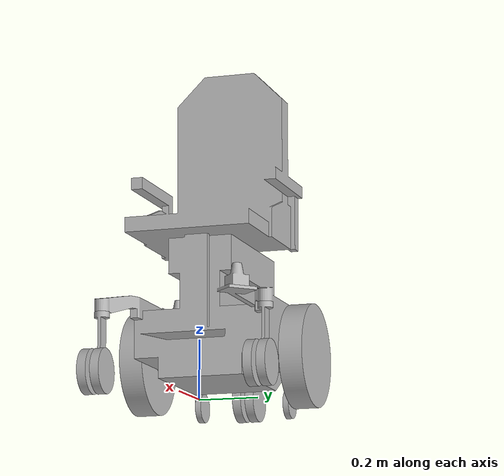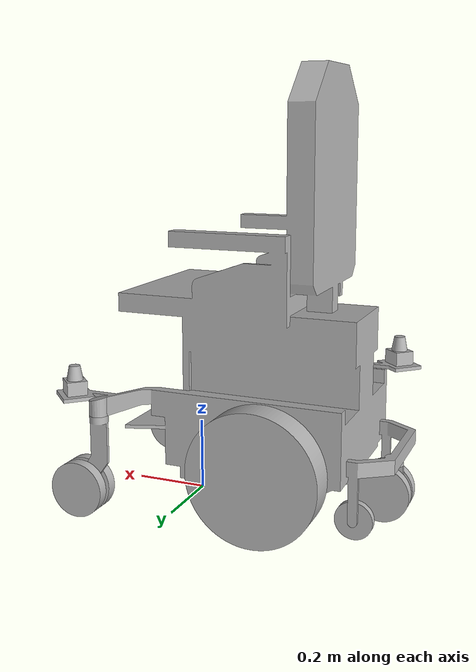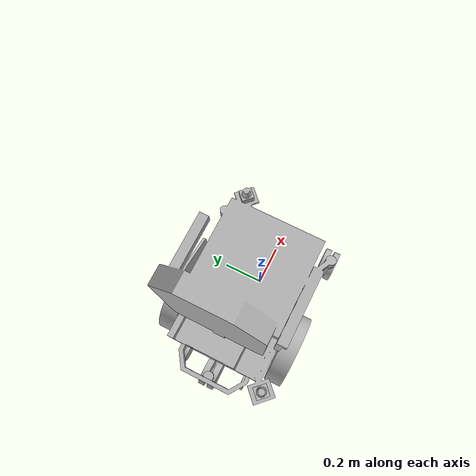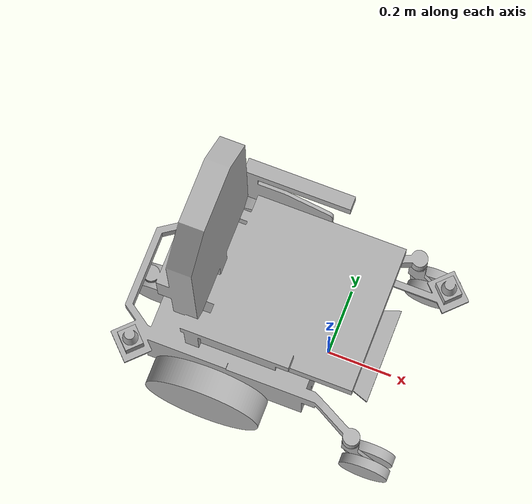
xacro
<?xml version="1.0" ?>
<robot name="wheelchair_actual_set_up" xmlns:xacro="http://www.ros.org/wiki/xacro">

<xacro:include filename="$(find wheelchair_actual_set_up_description)/urdf/materials.xacro" />
<xacro:include filename="$(find wheelchair_actual_set_up_description)/urdf/wheelchair_actual_set_up.trans" />
<xacro:include filename="$(find wheelchair_actual_set_up_description)/urdf/wheelchair_actual_set_up.gazebo" />

<!-- ── BASE FOOTPRINT (root — connects odom TF chain to base_link) ────────── -->
<link name="base_footprint"/>

<joint name="base_footprint_joint" type="fixed">
  <origin xyz="0 0 0" rpy="0 0 0"/>
  <parent link="base_footprint"/>
  <child link="base_link"/>
</joint>

<link name="base_link">
  <inertial>
    <origin xyz="-0.23569378322441226 -4.017221726580827e-05 0.4150850232561767" rpy="0 0 0"/>
    <mass value="740.7311688560441"/>
    <inertia ixx="59.700996" iyy="66.067044" izz="26.388075" ixy="-0.153656" iyz="0.008009" ixz="4.832062"/>
  </inertial>
  <visual>
    <origin xyz="0 0 0" rpy="0 0 0"/>
    <geometry>
      <mesh filename="package://wheelchair_actual_set_up_description/meshes/base_link.stl" scale="0.001 0.001 0.001"/>
    </geometry>
    <material name="silver"/>
  </visual>
  <collision>
    <origin xyz="0 0 0" rpy="0 0 0"/>
    <geometry>
      <mesh filename="package://wheelchair_actual_set_up_description/meshes/base_link.stl" scale="0.001 0.001 0.001"/>
    </geometry>
  </collision>
</link>

<link name="right_Wheel_1">
  <inertial>
    <origin xyz="0 0 0.04" rpy="0 0 0"/>
    <mass value="7.158118861204343"/>
    <inertia ixx="0.058622" iyy="0.058622" izz="0.109609" ixy="0.0" iyz="0.0" ixz="0.0"/>
  </inertial>
  <visual>
    <origin xyz="0.275 -0.175 -0.24" rpy="-1.5708 0 0"/>
    <geometry>
      <mesh filename="package://wheelchair_actual_set_up_description/meshes/right_Wheel_1.stl" scale="0.001 0.001 0.001"/>
    </geometry>
    <material name="silver"/>
  </visual>
  <collision>
    <origin xyz="0.275 -0.175 -0.24" rpy="-1.5708 0 0"/>
    <geometry>
      <mesh filename="package://wheelchair_actual_set_up_description/meshes/right_Wheel_1.stl" scale="0.001 0.001 0.001"/>
    </geometry>
  </collision>
</link>

<link name="left_Wheel_1">
  <inertial>
    <origin xyz="0 0 -0.04" rpy="0 0 0"/>
    <mass value="7.158118861204343"/>
    <inertia ixx="0.058622" iyy="0.058622" izz="0.109609" ixy="0.0" iyz="0.0" ixz="0.0"/>
  </inertial>
  <visual>
    <origin xyz="0.275 -0.175 0.24" rpy="-1.5708 0 0"/>
    <geometry>
      <mesh filename="package://wheelchair_actual_set_up_description/meshes/left_Wheel_1.stl" scale="0.001 0.001 0.001"/>
    </geometry>
    <material name="silver"/>
  </visual>
  <collision>
    <origin xyz="0.275 -0.175 0.24" rpy="-1.5708 0 0"/>
    <geometry>
      <mesh filename="package://wheelchair_actual_set_up_description/meshes/left_Wheel_1.stl" scale="0.001 0.001 0.001"/>
    </geometry>
  </collision>
</link>

<link name="right_caster_support_1">
  <inertial>
    <origin xyz="0.012125587554971257 -3.885780586188048e-16 -0.09318612303454091" rpy="0 0 0"/>
    <mass value="1.146855598139684"/>
    <inertia ixx="0.005854" iyy="0.006448" izz="0.000704" ixy="0.0" iyz="0.0" ixz="0.001329"/>
  </inertial>
  <visual>
    <origin xyz="-0.17 0.28 -0.28" rpy="0 0 0"/>
    <geometry>
      <mesh filename="package://wheelchair_actual_set_up_description/meshes/right_caster_support_1.stl" scale="0.001 0.001 0.001"/>
    </geometry>
    <material name="silver"/>
  </visual>
  <collision>
    <origin xyz="-0.17 0.28 -0.28" rpy="0 0 0"/>
    <geometry>
      <mesh filename="package://wheelchair_actual_set_up_description/meshes/right_caster_support_1.stl" scale="0.001 0.001 0.001"/>
    </geometry>
  </collision>
</link>

<link name="left_caster_support_1">
  <inertial>
    <origin xyz="0.012125587554971229 5.551115123125783e-16 -0.09318612303454074" rpy="0 0 0"/>
    <mass value="1.1468555981396837"/>
    <inertia ixx="0.005854" iyy="0.006448" izz="0.000704" ixy="0.0" iyz="0.0" ixz="0.001329"/>
  </inertial>
  <visual>
    <origin xyz="-0.17 -0.28 -0.28" rpy="0 0 0"/>
    <geometry>
      <mesh filename="package://wheelchair_actual_set_up_description/meshes/left_caster_support_1.stl" scale="0.001 0.001 0.001"/>
    </geometry>
    <material name="silver"/>
  </visual>
  <collision>
    <origin xyz="-0.17 -0.28 -0.28" rpy="0 0 0"/>
    <geometry>
      <mesh filename="package://wheelchair_actual_set_up_description/meshes/left_caster_support_1.stl" scale="0.001 0.001 0.001"/>
    </geometry>
  </collision>
</link>

<link name="rear_caster_support_1">
  <inertial>
    <origin xyz="0.0072802234586748504 -3.7762707663705435e-13 -0.04250332313264295" rpy="0 0 0"/>
    <mass value="0.5335655221414596"/>
    <inertia ixx="0.000619" iyy="0.000745" izz="0.000181" ixy="-0.0" iyz="0.0" ixz="0.000162"/>
  </inertial>
  <visual>
    <origin xyz="0.56 0.0 -0.16" rpy="0 0 0"/>
    <geometry>
      <mesh filename="package://wheelchair_actual_set_up_description/meshes/rear_caster_support_1.stl" scale="0.001 0.001 0.001"/>
    </geometry>
    <material name="silver"/>
  </visual>
  <collision>
    <origin xyz="0.56 0.0 -0.16" rpy="0 0 0"/>
    <geometry>
      <mesh filename="package://wheelchair_actual_set_up_description/meshes/rear_caster_support_1.stl" scale="0.001 0.001 0.001"/>
    </geometry>
  </collision>
</link>

<link name="rear_caster_3_1">
  <inertial>
    <origin xyz="0 0 0.01" rpy="0 0 0"/>
    <mass value="0.14608405839192534"/>
    <inertia ixx="9.6e-05" iyy="9.6e-05" izz="0.000183" ixy="0.0" iyz="0.0" ixz="0.0"/>
  </inertial>
  <visual>
    <origin xyz="0.4975 -0.05 0.168" rpy="-1.5708 0 0"/>
    <geometry>
      <mesh filename="package://wheelchair_actual_set_up_description/meshes/rear_caster_3_1.stl" scale="0.001 0.001 0.001"/>
    </geometry>
    <material name="silver"/>
  </visual>
  <collision>
    <origin xyz="0.4975 -0.05 0.168" rpy="-1.5708 0 0"/>
    <geometry>
      <mesh filename="package://wheelchair_actual_set_up_description/meshes/rear_caster_3_1.stl" scale="0.001 0.001 0.001"/>
    </geometry>
  </collision>
</link>

<link name="rear_caster_1_1">
  <inertial>
    <origin xyz="0 0 -0.015" rpy="0 0 0"/>
    <mass value="0.49303369707274775"/>
    <inertia ixx="0.00073" iyy="0.00073" izz="0.001387" ixy="0.0" iyz="0.0" ixz="0.0"/>
  </inertial>
  <visual>
    <origin xyz="0.535 -0.075 0.0075" rpy="-1.5708 0 0"/>
    <geometry>
      <mesh filename="package://wheelchair_actual_set_up_description/meshes/rear_caster_1_1.stl" scale="0.001 0.001 0.001"/>
    </geometry>
    <material name="silver"/>
  </visual>
  <collision>
    <origin xyz="0.535 -0.075 0.0075" rpy="-1.5708 0 0"/>
    <geometry>
      <mesh filename="package://wheelchair_actual_set_up_description/meshes/rear_caster_1_1.stl" scale="0.001 0.001 0.001"/>
    </geometry>
  </collision>
</link>

<link name="rear_caster_2_1">
  <inertial>
    <origin xyz="0 0 0.015" rpy="0 0 0"/>
    <mass value="0.49303369707274786"/>
    <inertia ixx="0.00073" iyy="0.00073" izz="0.001387" ixy="0.0" iyz="0.0" ixz="0.0"/>
  </inertial>
  <visual>
    <origin xyz="0.535 -0.075 -0.0075" rpy="-1.5708 0 0"/>
    <geometry>
      <mesh filename="package://wheelchair_actual_set_up_description/meshes/rear_caster_2_1.stl" scale="0.001 0.001 0.001"/>
    </geometry>
    <material name="silver"/>
  </visual>
  <collision>
    <origin xyz="0.535 -0.075 -0.0075" rpy="-1.5708 0 0"/>
    <geometry>
      <mesh filename="package://wheelchair_actual_set_up_description/meshes/rear_caster_2_1.stl" scale="0.001 0.001 0.001"/>
    </geometry>
  </collision>
</link>

<link name="rear_caster_4_1">
  <inertial>
    <origin xyz="0 0 -0.01" rpy="0 0 0"/>
    <mass value="0.14608405839192515"/>
    <inertia ixx="9.6e-05" iyy="9.6e-05" izz="0.000183" ixy="0.0" iyz="0.0" ixz="0.0"/>
  </inertial>
  <visual>
    <origin xyz="0.4975 -0.05 -0.168" rpy="-1.5708 0 0"/>
    <geometry>
      <mesh filename="package://wheelchair_actual_set_up_description/meshes/rear_caster_4_1.stl" scale="0.001 0.001 0.001"/>
    </geometry>
    <material name="silver"/>
  </visual>
  <collision>
    <origin xyz="0.4975 -0.05 -0.168" rpy="-1.5708 0 0"/>
    <geometry>
      <mesh filename="package://wheelchair_actual_set_up_description/meshes/rear_caster_4_1.stl" scale="0.001 0.001 0.001"/>
    </geometry>
  </collision>
</link>

<link name="left_caster_2_1">
  <inertial>
    <origin xyz="1.2028525078755514e-07 0 -0.015" rpy="0 0 0"/>
    <mass value="0.49303369707274797"/>
    <inertia ixx="0.00073" iyy="0.00073" izz="0.001387" ixy="0.0" iyz="0.0" ixz="0.0"/>
  </inertial>
  <visual>
    <origin xyz="-0.225003 -0.075 0.2875" rpy="-1.5708 0 0"/>
    <geometry>
      <mesh filename="package://wheelchair_actual_set_up_description/meshes/left_caster_2_1.stl" scale="0.001 0.001 0.001"/>
    </geometry>
    <material name="silver"/>
  </visual>
  <collision>
    <origin xyz="-0.225003 -0.075 0.2875" rpy="-1.5708 0 0"/>
    <geometry>
      <mesh filename="package://wheelchair_actual_set_up_description/meshes/left_caster_2_1.stl" scale="0.001 0.001 0.001"/>
    </geometry>
  </collision>
</link>

<link name="left_caster_1_1">
  <inertial>
    <origin xyz="1.2028525078755514e-07 0 0.015" rpy="0 0 0"/>
    <mass value="0.49303369707274797"/>
    <inertia ixx="0.00073" iyy="0.00073" izz="0.001387" ixy="0.0" iyz="0.0" ixz="0.0"/>
  </inertial>
  <visual>
    <origin xyz="-0.225003 -0.075 0.2725" rpy="-1.5708 0 0"/>
    <geometry>
      <mesh filename="package://wheelchair_actual_set_up_description/meshes/left_caster_1_1.stl" scale="0.001 0.001 0.001"/>
    </geometry>
    <material name="silver"/>
  </visual>
  <collision>
    <origin xyz="-0.225003 -0.075 0.2725" rpy="-1.5708 0 0"/>
    <geometry>
      <mesh filename="package://wheelchair_actual_set_up_description/meshes/left_caster_1_1.stl" scale="0.001 0.001 0.001"/>
    </geometry>
  </collision>
</link>

<link name="right_caster_1_1">
  <inertial>
    <origin xyz="1.2028525078755514e-07 0 -0.015" rpy="0 0 0"/>
    <mass value="0.49303369707274797"/>
    <inertia ixx="0.00073" iyy="0.00073" izz="0.001387" ixy="0.0" iyz="0.0" ixz="0.0"/>
  </inertial>
  <visual>
    <origin xyz="-0.225003 -0.075 -0.2725" rpy="-1.5708 0 0"/>
    <geometry>
      <mesh filename="package://wheelchair_actual_set_up_description/meshes/right_caster_1_1.stl" scale="0.001 0.001 0.001"/>
    </geometry>
    <material name="silver"/>
  </visual>
  <collision>
    <origin xyz="-0.225003 -0.075 -0.2725" rpy="-1.5708 0 0"/>
    <geometry>
      <mesh filename="package://wheelchair_actual_set_up_description/meshes/right_caster_1_1.stl" scale="0.001 0.001 0.001"/>
    </geometry>
  </collision>
</link>

<link name="right_caster_2_1">
  <inertial>
    <origin xyz="1.2028525078755514e-07 0 0.015" rpy="0 0 0"/>
    <mass value="0.49303369707274797"/>
    <inertia ixx="0.00073" iyy="0.00073" izz="0.001387" ixy="0.0" iyz="0.0" ixz="0.0"/>
  </inertial>
  <visual>
    <origin xyz="-0.225003 -0.075 -0.2875" rpy="-1.5708 0 0"/>
    <geometry>
      <mesh filename="package://wheelchair_actual_set_up_description/meshes/right_caster_2_1.stl" scale="0.001 0.001 0.001"/>
    </geometry>
    <material name="silver"/>
  </visual>
  <collision>
    <origin xyz="-0.225003 -0.075 -0.2875" rpy="-1.5708 0 0"/>
    <geometry>
      <mesh filename="package://wheelchair_actual_set_up_description/meshes/right_caster_2_1.stl" scale="0.001 0.001 0.001"/>
    </geometry>
  </collision>
</link>

<link name="front_Lidar_1">
  <inertial>
    <origin xyz="3.8200672292099114e-08 3.8200916013808595e-08 0.02946382247654611" rpy="0 0 0"/>
    <mass value="0.1873737570324739"/>
    <inertia ixx="0.000117" iyy="0.000117" izz="8.6e-05" ixy="3e-06" iyz="0.0" ixz="0.0"/>
  </inertial>
  <visual>
    <origin xyz="-0.280052 -0.220052 -0.309" rpy="0 0 0"/>
    <geometry>
      <mesh filename="package://wheelchair_actual_set_up_description/meshes/front_Lidar_1.stl" scale="0.001 0.001 0.001"/>
    </geometry>
    <material name="silver"/>
  </visual>
  <collision>
    <origin xyz="-0.280052 -0.220052 -0.309" rpy="0 0 0"/>
    <geometry>
      <mesh filename="package://wheelchair_actual_set_up_description/meshes/front_Lidar_1.stl" scale="0.001 0.001 0.001"/>
    </geometry>
  </collision>
</link>

<link name="rear_lidar_1">
  <inertial>
    <origin xyz="-3.8200672736188324e-08 -3.820091615258647e-08 0.029463822476545998" rpy="0 0 0"/>
    <mass value="0.18737375703247405"/>
    <inertia ixx="0.000117" iyy="0.000117" izz="8.6e-05" ixy="3e-06" iyz="-0.0" ixz="-0.0"/>
  </inertial>
  <visual>
    <origin xyz="0.510052 0.250052 -0.359" rpy="0 0 0"/>
    <geometry>
      <mesh filename="package://wheelchair_actual_set_up_description/meshes/rear_lidar_1.stl" scale="0.001 0.001 0.001"/>
    </geometry>
    <material name="silver"/>
  </visual>
  <collision>
    <origin xyz="0.510052 0.250052 -0.359" rpy="0 0 0"/>
    <geometry>
      <mesh filename="package://wheelchair_actual_set_up_description/meshes/rear_lidar_1.stl" scale="0.001 0.001 0.001"/>
    </geometry>
  </collision>
</link>

<joint name="right_Wheel_Joint" type="continuous">
  <origin xyz="-0.275 -0.24 0.175" rpy="1.5708 0 0"/>
  <parent link="base_link"/>
  <child link="right_Wheel_1"/>
  <axis xyz="0.0 0.0 -1.0"/>
</joint>

<joint name="left_Wheel_Joint" type="continuous">
  <origin xyz="-0.275 0.24 0.175" rpy="1.5708 0 0"/>
  <parent link="base_link"/>
  <child link="left_Wheel_1"/>
  <axis xyz="0.0 0.0 -1.0"/>
</joint>

<joint name="right_caster_support_1_joint" type="continuous">
  <origin xyz="0.17 -0.28 0.28" rpy="0 0 0"/>
  <parent link="base_link"/>
  <child link="right_caster_support_1"/>
  <axis xyz="0.0 0.0 -1.0"/>
</joint>

<joint name="left_caster_support_1_joint" type="continuous">
  <origin xyz="0.17 0.28 0.28" rpy="0 0 0"/>
  <parent link="base_link"/>
  <child link="left_caster_support_1"/>
  <axis xyz="0.0 0.0 -1.0"/>
</joint>

<joint name="rear_caster_support_joint" type="continuous">
  <origin xyz="-0.56 0.0 0.16" rpy="0 0 0"/>
  <parent link="base_link"/>
  <child link="rear_caster_support_1"/>
  <axis xyz="0.0 0.0 -1.0"/>
</joint>

<joint name="rear_caster_3_joint" type="continuous">
  <origin xyz="-0.4975 0.168 0.05" rpy="1.5708 0 0"/>
  <parent link="base_link"/>
  <child link="rear_caster_3_1"/>
  <axis xyz="0.0 0.0 1.0"/>
</joint>

<joint name="rear_caster_1_joint" type="continuous">
  <origin xyz="0.025 0.0075 -0.085" rpy="1.5708 0 0"/>
  <parent link="rear_caster_support_1"/>
  <child link="rear_caster_1_1"/>
  <axis xyz="0.0 0.0 -1.0"/>
</joint>

<joint name="rear_caster_2_joint" type="continuous">
  <origin xyz="0.025 -0.0075 -0.085" rpy="1.5708 0 0"/>
  <parent link="rear_caster_support_1"/>
  <child link="rear_caster_2_1"/>
  <axis xyz="0.0 0.0 1.0"/>
</joint>

<joint name="rear_caster_4_joint" type="continuous">
  <origin xyz="-0.4975 -0.168 0.05" rpy="1.5708 0 0"/>
  <parent link="base_link"/>
  <child link="rear_caster_4_1"/>
  <axis xyz="0.0 0.0 -1.0"/>
</joint>

<joint name="left_caster_2_joint" type="continuous">
  <origin xyz="0.055003 0.0075 -0.205" rpy="1.5708 0 0"/>
  <parent link="left_caster_support_1"/>
  <child link="left_caster_2_1"/>
  <axis xyz="0.0 0.0 -1.0"/>
</joint>

<joint name="left_caster_1_joint" type="continuous">
  <origin xyz="0.055003 -0.0075 -0.205" rpy="1.5708 0 0"/>
  <parent link="left_caster_support_1"/>
  <child link="left_caster_1_1"/>
  <axis xyz="0.0 0.0 1.0"/>
</joint>

<joint name="right_caster_1_joint" type="continuous">
  <origin xyz="0.055003 0.0075 -0.205" rpy="1.5708 0 0"/>
  <parent link="right_caster_support_1"/>
  <child link="right_caster_1_1"/>
  <axis xyz="0.0 0.0 -1.0"/>
</joint>

<joint name="right_caster_2_joint" type="continuous">
  <origin xyz="0.055003 -0.0075 -0.205" rpy="1.5708 0 0"/>
  <parent link="right_caster_support_1"/>
  <child link="right_caster_2_1"/>
  <axis xyz="0.0 0.0 1.0"/>
</joint>

<joint name="front_lidar_joint" type="fixed">
  <origin xyz="0.280052 0.220052 0.309" rpy="0 0 0"/>
  <parent link="base_link"/>
  <child link="front_Lidar_1"/>
</joint>

<joint name="rear_lidar_joint" type="fixed">
  <origin xyz="-0.510052 -0.250052 0.359" rpy="0 0 0"/>
  <parent link="base_link"/>
  <child link="rear_lidar_1"/>
</joint>

</robot>

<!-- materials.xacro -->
<robot name="wheelchair_actual_set_up" xmlns:xacro="http://www.ros.org/wiki/xacro" >

<material name="silver">
  <color rgba="0.700 0.700 0.700 1.000"/>
</material>

</robot>

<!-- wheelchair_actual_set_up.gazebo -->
<robot name="wheelchair_actual_set_up" xmlns:xacro="http://www.ros.org/wiki/xacro" >

<xacro:property name="body_color" value="Gazebo/Silver" />

<gazebo>
  <plugin filename="libignition-gazebo6-diff-drive-system.so"
          name="ignition::gazebo::systems::DiffDrive">
    <left_joint>left_Wheel_Joint</left_joint>
    <right_joint>right_Wheel_Joint</right_joint>
    <wheel_separation>0.48</wheel_separation>
    <wheel_radius>0.175</wheel_radius>
    <odom_publish_frequency>50</odom_publish_frequency>
    <topic>/cmd_vel</topic>
    <odom_topic>/odom</odom_topic>
    <frame_id>odom</frame_id>
    <child_frame_id>base_footprint</child_frame_id>
  </plugin>
</gazebo>
<gazebo reference="base_link">
  <material>${body_color}</material>
  <mu1>0.2</mu1>
  <mu2>0.2</mu2>
  <selfCollide>true</selfCollide>
  <gravity>true</gravity>
</gazebo>

<gazebo reference="left_Wheel_1">
  <material>${body_color}</material>
  <mu1>1.0</mu1>
  <mu2>1.0</mu2>
  <kp>500000.0</kp>
  <kd>10.0</kd>
  <selfCollide>false</selfCollide>
</gazebo>

<gazebo reference="right_Wheel_1">
  <material>${body_color}</material>
  <mu1>1.0</mu1>
  <mu2>1.0</mu2>
  <kp>500000.0</kp>
  <kd>10.0</kd>
  <selfCollide>false</selfCollide>
</gazebo>

<gazebo reference="right_caster_support_1">
  <material>${body_color}</material>
  <mu1>0.01</mu1>
  <mu2>0.01</mu2>
  <kp>1000000.0</kp>
  <kd>100.0</kd>
  <selfCollide>true</selfCollide>
</gazebo>

<gazebo reference="right_caster_2_1">
  <material>${body_color}</material>
  <mu1>0.01</mu1>
  <mu2>0.01</mu2>
  <kp>1000000.0</kp>
  <kd>100.0</kd>
  <selfCollide>true</selfCollide>
</gazebo>

<gazebo reference="right_caster_1_1">
  <material>${body_color}</material>
  <mu1>0.01</mu1>
  <mu2>0.01</mu2>
  <kp>1000000.0</kp>
  <kd>100.0</kd>
  <selfCollide>true</selfCollide>
</gazebo>

<gazebo reference="left_caster_support_1">
  <material>${body_color}</material>
  <mu1>0.01</mu1>
  <mu2>0.01</mu2>
  <selfCollide>true</selfCollide>
</gazebo>

<gazebo reference="left_caster_1_1">
  <material>${body_color}</material>
  <mu1>0.01</mu1>
  <mu2>0.01</mu2>
  <kp>1000000.0</kp>
  <kd>100.0</kd>
  <selfCollide>true</selfCollide>
</gazebo>

<gazebo reference="left_caster_2_1">
  <material>${body_color}</material>
  <mu1>0.01</mu1>
  <mu2>0.01</mu2>
  <kp>1000000.0</kp>
  <kd>100.0</kd>
  <selfCollide>true</selfCollide>
</gazebo>

<gazebo reference="rear_caster_4_1">
  <material>${body_color}</material>
  <mu1>0.01</mu1>
  <mu2>0.01</mu2>
  <kp>1000000.0</kp>
  <kd>100.0</kd>
  <selfCollide>true</selfCollide>
</gazebo>

<gazebo reference="rear_caster_3_1">
  <material>${body_color}</material>
  <mu1>0.01</mu1>
  <mu2>0.01</mu2>
  <kp>1000000.0</kp>
  <kd>100.0</kd>
  <selfCollide>true</selfCollide>
</gazebo>

<gazebo reference="rear_caster_support_1">
  <material>${body_color}</material>
  <mu1>0.01</mu1>
  <mu2>0.01</mu2>
  <selfCollide>true</selfCollide>
</gazebo>

<gazebo reference="rear_caster_1_1">
  <material>${body_color}</material>
  <mu1>0.01</mu1>
  <mu2>0.01</mu2>
  <kp>1000000.0</kp>
  <kd>100.0</kd>
  <selfCollide>true</selfCollide>
</gazebo>

<gazebo reference="rear_caster_2_1">
  <material>${body_color}</material>
  <mu1>0.01</mu1>
  <mu2>0.01</mu2>
  <kp>1000000.0</kp>
  <kd>100.0</kd>
  <selfCollide>true</selfCollide>
</gazebo>

<!-- Joint state publisher — required for /joint_states bridge to RSP -->
<gazebo>
  <plugin filename="libignition-gazebo6-joint-state-publisher-system.so"
          name="ignition::gazebo::systems::JointStatePublisher">
  </plugin>
</gazebo>

<!-- LiDAR Gazebo plug in-->
<gazebo>
  <plugin name="ignition::gazebo::systems::Sensors"
          filename="libignition-gazebo6-sensors-system.so">
    <render_engine>ogre2</render_engine>
  </plugin>
</gazebo>

<!-- ── REAR LIDAR (SICK TiM561) ─────────────────────────────────────────── -->
<gazebo reference="rear_lidar_1">
  <material>Gazebo/Black</material>
  <sensor name="rear_lidar_sensor" type="gpu_lidar">
    <pose>0 0 0.04 0 0 3.926991</pose>
    <always_on>true</always_on>
    <visualize>true</visualize>
    <update_rate>15</update_rate>
    <lidar>
      <scan>
        <horizontal>
          <samples>811</samples>
          <resolution>1</resolution>
          <min_angle>-2.35619</min_angle>
          <max_angle>2.35619</max_angle>
        </horizontal>
      </scan>
      <range>
        <min>0.05</min>
        <max>10.0</max>
        <resolution>0.01</resolution>
      </range>
      <noise>
        <type>gaussian</type>
        <mean>0.0</mean>
        <stddev>0.01</stddev>
      </noise>
    </lidar>
    <topic>scan_rear</topic>
    <frame_id>rear_lidar_1</frame_id>
  </sensor>
</gazebo>

<!-- ── FRONT LIDAR (SICK TiM561) ────────────────────────────────────────── -->
<gazebo reference="front_Lidar_1">
  <material>Gazebo/Black</material>
  <sensor name="front_lidar_sensor" type="gpu_lidar">
    <pose>0 0 0.04 0 0 0.785398</pose>
    <always_on>true</always_on>
    <visualize>true</visualize>
    <update_rate>15</update_rate>
    <lidar>
      <scan>
        <horizontal>
          <samples>811</samples>
          <resolution>1</resolution>
          <min_angle>-2.35619</min_angle>
          <max_angle>2.35619</max_angle>
        </horizontal>
      </scan>
      <range>
        <min>0.05</min>
        <max>10.0</max>
        <resolution>0.01</resolution>
      </range>
      <noise>
        <type>gaussian</type>
        <mean>0.0</mean>
        <stddev>0.01</stddev>
      </noise>
    </lidar>
    <topic>scan_front</topic>
    <frame_id>front_Lidar_1</frame_id>
  </sensor>
</gazebo>

</robot>
